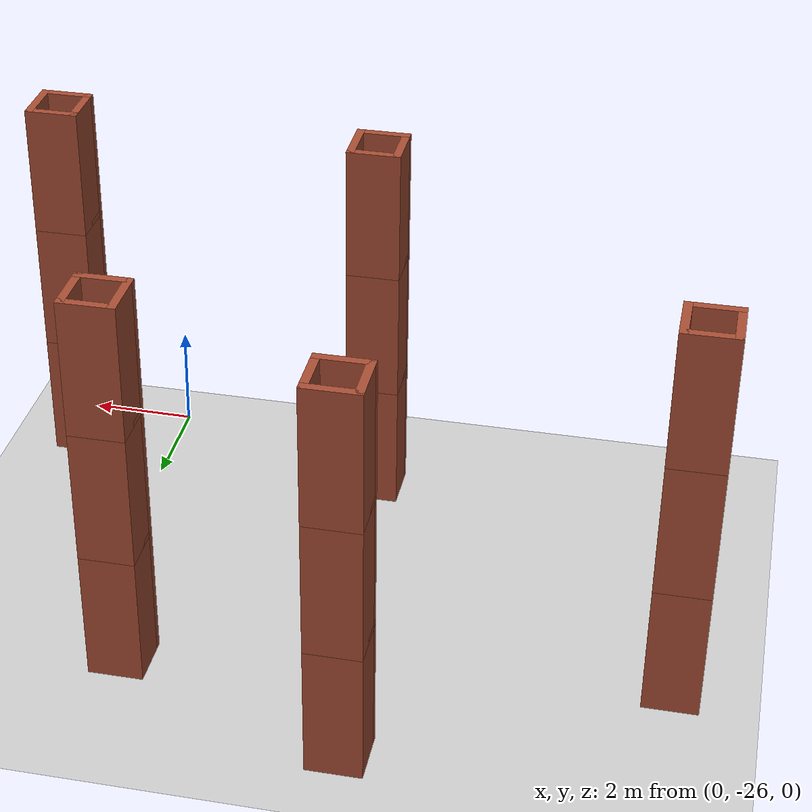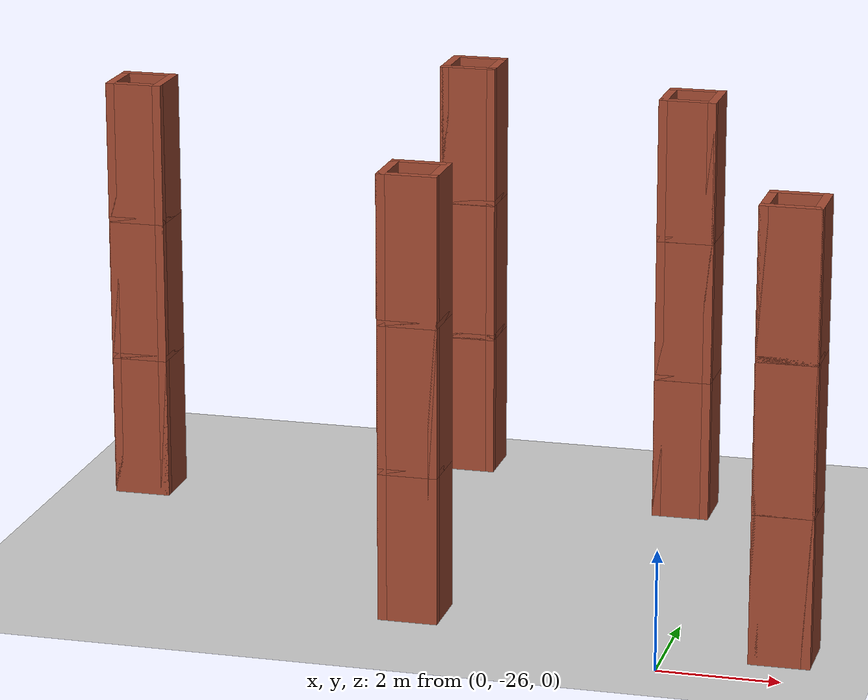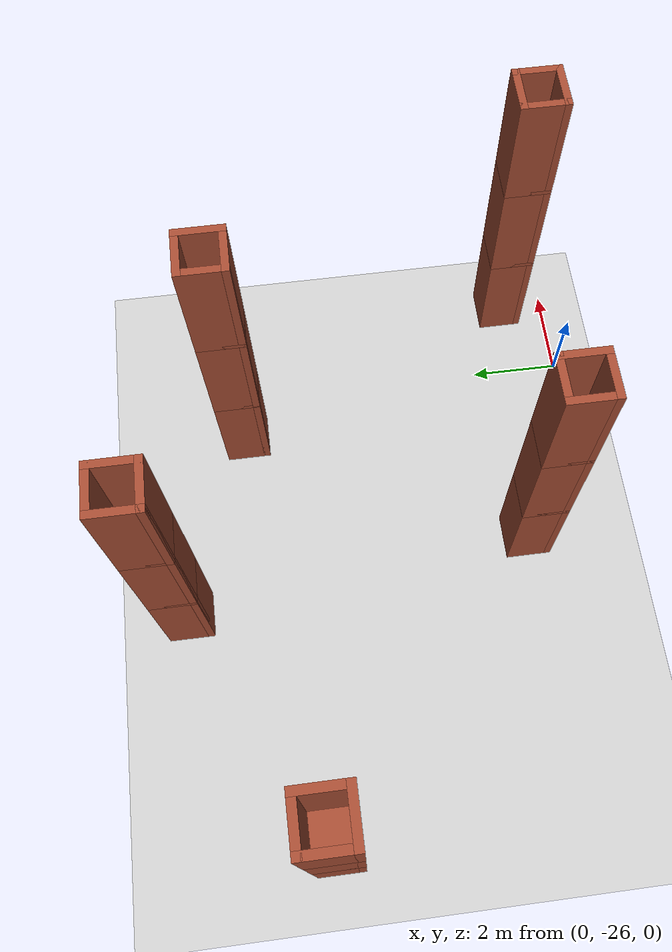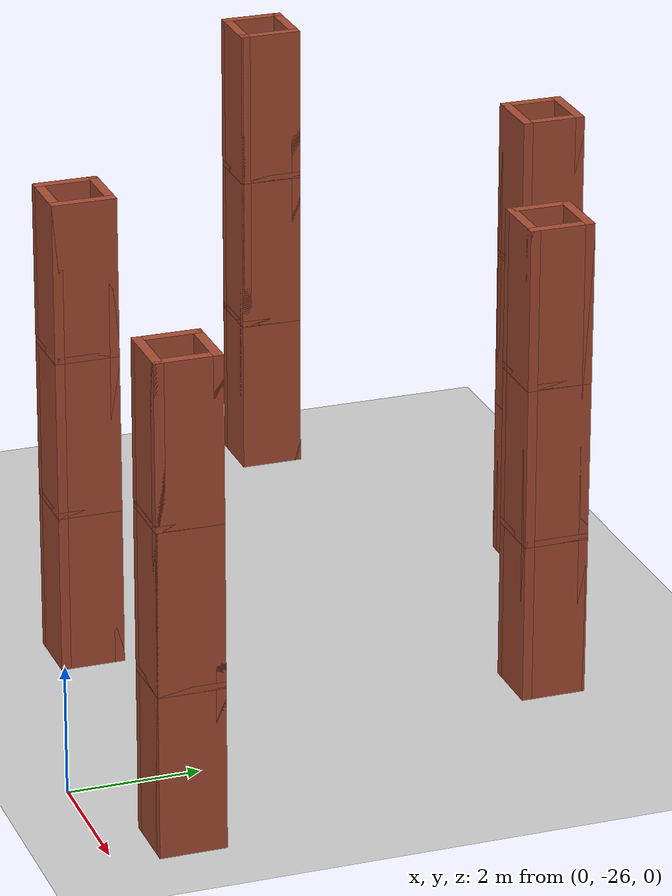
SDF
<sdf version="1.7">
 <world name="default">
  <model name="ground_plane">
   <static>1</static>
   <link name="link">
    <collision name="collision">
     <geometry><plane><normal>0 0 1</normal><size>100 100</size></plane></geometry>
     <surface>
      <contact><collide_bitmask>65535</collide_bitmask></contact>
      <friction><ode><mu>100</mu><mu2>50</mu2></ode></friction>
     </surface>
    </collision>
    <visual name="visual">
     <cast_shadows>0</cast_shadows>
     <geometry><plane><normal>0 0 1</normal><size>100 100</size></plane></geometry>
     <material>
      <script><uri>file://media/materials/scripts/gazebo.material</uri><name>Gazebo/Grey</name></script>
     </material>
    </visual>
   </link>
  </model>
  <model name="wall_model_clone_3">
   <pose>5.07114 -25.4883 0 0 -0 0</pose>
   <link name="Floor_3">
    <collision name="Floor_3_Collision">
     <geometry><box><size>1 1 0.1</size></box></geometry>
     <pose>0 0 0.05 0 -0 0</pose>
    </collision>
    <visual name="Floor_3_Visual">
     <pose>0 0 0.05 0 -0 0</pose>
     <geometry><box><size>1 1 0.1</size></box></geometry>
     <material>
      <script><uri>file://media/materials/scripts/gazebo.material</uri><name>Gazebo/Bricks</name></script>
      <ambient>1 1 1 1</ambient>
     </material>
     <meta><layer>1</layer></meta>
    </visual>
    <pose>-3.21504 0.623396 2.5 0 -0 0</pose>
   </link>
   <link name="Floor_4">
    <collision name="Floor_4_Collision">
     <geometry><box><size>1 1 0.1</size></box></geometry>
     <pose>0 0 0.05 0 -0 0</pose>
    </collision>
    <visual name="Floor_4_Visual">
     <pose>0 0 0.05 0 -0 0</pose>
     <geometry><box><size>1 1 0.1</size></box></geometry>
     <material>
      <script><uri>file://media/materials/scripts/gazebo.material</uri><name>Gazebo/Bricks</name></script>
      <ambient>1 1 1 1</ambient>
     </material>
     <meta><layer>2</layer></meta>
    </visual>
    <pose>-3.21504 0.623396 5 0 -0 0</pose>
   </link>
   <link name="Wall_19">
    <collision name="Wall_19_Collision">
     <geometry><box><size>1 0.15 2.5</size></box></geometry>
     <pose>0 0 1.25 0 -0 0</pose>
    </collision>
    <visual name="Wall_19_Visual">
     <pose>0 0 1.25 0 -0 0</pose>
     <geometry><box><size>1 0.15 2.5</size></box></geometry>
     <material>
      <script><uri>file://media/materials/scripts/gazebo.material</uri><name>Gazebo/Bricks</name></script>
      <ambient>1 1 1 1</ambient>
     </material>
     <meta><layer>0</layer></meta>
    </visual>
    <pose>-3.64004 0.623396 0 0 -0 1.5708</pose>
   </link>
   <link name="Wall_21">
    <collision name="Wall_21_Collision">
     <geometry><box><size>1 0.15 2.5</size></box></geometry>
     <pose>0 0 1.25 0 -0 0</pose>
    </collision>
    <visual name="Wall_21_Visual">
     <pose>0 0 1.25 0 -0 0</pose>
     <geometry><box><size>1 0.15 2.5</size></box></geometry>
     <material>
      <script><uri>file://media/materials/scripts/gazebo.material</uri><name>Gazebo/Bricks</name></script>
      <ambient>1 1 1 1</ambient>
     </material>
     <meta><layer>0</layer></meta>
    </visual>
    <pose>-3.21504 1.0484 0 0 -0 0</pose>
   </link>
   <link name="Wall_22">
    <collision name="Wall_22_Collision">
     <geometry><box><size>1 0.15 2.5</size></box></geometry>
     <pose>0 0 1.25 0 -0 0</pose>
    </collision>
    <visual name="Wall_22_Visual">
     <pose>0 0 1.25 0 -0 0</pose>
     <geometry><box><size>1 0.15 2.5</size></box></geometry>
     <material>
      <script><uri>file://media/materials/scripts/gazebo.material</uri><name>Gazebo/Bricks</name></script>
      <ambient>1 1 1 1</ambient>
     </material>
     <meta><layer>0</layer></meta>
    </visual>
    <pose>-2.79004 0.623396 0 0 -0 -1.5708</pose>
   </link>
   <link name="Wall_23">
    <collision name="Wall_23_Collision">
     <geometry><box><size>1 0.15 2.5</size></box></geometry>
     <pose>0 0 1.25 0 -0 0</pose>
    </collision>
    <visual name="Wall_23_Visual">
     <pose>0 0 1.25 0 -0 0</pose>
     <geometry><box><size>1 0.15 2.5</size></box></geometry>
     <material>
      <script><uri>file://media/materials/scripts/gazebo.material</uri><name>Gazebo/Bricks</name></script>
      <ambient>1 1 1 1</ambient>
     </material>
     <meta><layer>0</layer></meta>
    </visual>
    <pose>-3.21504 0.198396 0 0 -0 3.14159</pose>
   </link>
   <link name="Wall_25">
    <collision name="Wall_25_Collision">
     <geometry><box><size>1 0.15 2.5</size></box></geometry>
     <pose>0 0 1.25 0 -0 0</pose>
    </collision>
    <visual name="Wall_25_Visual">
     <pose>0 0 1.25 0 -0 0</pose>
     <geometry><box><size>1 0.15 2.5</size></box></geometry>
     <material>
      <script><uri>file://media/materials/scripts/gazebo.material</uri><name>Gazebo/Bricks</name></script>
      <ambient>1 1 1 1</ambient>
     </material>
     <meta><layer>1</layer></meta>
    </visual>
    <pose>-3.64004 0.623396 2.5 0 -0 1.5708</pose>
   </link>
   <link name="Wall_26">
    <collision name="Wall_26_Collision">
     <geometry><box><size>1 0.15 2.5</size></box></geometry>
     <pose>0 0 1.25 0 -0 0</pose>
    </collision>
    <visual name="Wall_26_Visual">
     <pose>0 0 1.25 0 -0 0</pose>
     <geometry><box><size>1 0.15 2.5</size></box></geometry>
     <material>
      <script><uri>file://media/materials/scripts/gazebo.material</uri><name>Gazebo/Bricks</name></script>
      <ambient>1 1 1 1</ambient>
     </material>
     <meta><layer>1</layer></meta>
    </visual>
    <pose>-3.21504 1.0484 2.5 0 -0 0</pose>
   </link>
   <link name="Wall_27">
    <collision name="Wall_27_Collision">
     <geometry><box><size>1 0.15 2.5</size></box></geometry>
     <pose>0 0 1.25 0 -0 0</pose>
    </collision>
    <visual name="Wall_27_Visual">
     <pose>0 0 1.25 0 -0 0</pose>
     <geometry><box><size>1 0.15 2.5</size></box></geometry>
     <material>
      <script><uri>file://media/materials/scripts/gazebo.material</uri><name>Gazebo/Bricks</name></script>
      <ambient>1 1 1 1</ambient>
     </material>
     <meta><layer>1</layer></meta>
    </visual>
    <pose>-2.79004 0.623396 2.5 0 -0 -1.5708</pose>
   </link>
   <link name="Wall_28">
    <collision name="Wall_28_Collision">
     <geometry><box><size>1 0.15 2.5</size></box></geometry>
     <pose>0 0 1.25 0 -0 0</pose>
    </collision>
    <visual name="Wall_28_Visual">
     <pose>0 0 1.25 0 -0 0</pose>
     <geometry><box><size>1 0.15 2.5</size></box></geometry>
     <material>
      <script><uri>file://media/materials/scripts/gazebo.material</uri><name>Gazebo/Bricks</name></script>
      <ambient>1 1 1 1</ambient>
     </material>
     <meta><layer>1</layer></meta>
    </visual>
    <pose>-3.21504 0.198396 2.5 0 -0 3.14159</pose>
   </link>
   <link name="Wall_29">
    <collision name="Wall_29_Collision">
     <geometry><box><size>1 0.15 2.5</size></box></geometry>
     <pose>0 0 1.25 0 -0 0</pose>
    </collision>
    <visual name="Wall_29_Visual">
     <pose>0 0 1.25 0 -0 0</pose>
     <geometry><box><size>1 0.15 2.5</size></box></geometry>
     <material>
      <script><uri>file://media/materials/scripts/gazebo.material</uri><name>Gazebo/Bricks</name></script>
      <ambient>1 1 1 1</ambient>
     </material>
     <meta><layer>2</layer></meta>
    </visual>
    <pose>-3.64004 0.623396 5 0 -0 1.5708</pose>
   </link>
   <link name="Wall_30">
    <collision name="Wall_30_Collision">
     <geometry><box><size>1 0.15 2.5</size></box></geometry>
     <pose>0 0 1.25 0 -0 0</pose>
    </collision>
    <visual name="Wall_30_Visual">
     <pose>0 0 1.25 0 -0 0</pose>
     <geometry><box><size>1 0.15 2.5</size></box></geometry>
     <material>
      <script><uri>file://media/materials/scripts/gazebo.material</uri><name>Gazebo/Bricks</name></script>
      <ambient>1 1 1 1</ambient>
     </material>
     <meta><layer>2</layer></meta>
    </visual>
    <pose>-3.21504 1.0484 5 0 -0 0</pose>
   </link>
   <link name="Wall_31">
    <collision name="Wall_31_Collision">
     <geometry><box><size>1 0.15 2.5</size></box></geometry>
     <pose>0 0 1.25 0 -0 0</pose>
    </collision>
    <visual name="Wall_31_Visual">
     <pose>0 0 1.25 0 -0 0</pose>
     <geometry><box><size>1 0.15 2.5</size></box></geometry>
     <material>
      <script><uri>file://media/materials/scripts/gazebo.material</uri><name>Gazebo/Bricks</name></script>
      <ambient>1 1 1 1</ambient>
     </material>
     <meta><layer>2</layer></meta>
    </visual>
    <pose>-2.79004 0.623396 5 0 -0 -1.5708</pose>
   </link>
   <link name="Wall_32">
    <collision name="Wall_32_Collision">
     <geometry><box><size>1 0.15 2.5</size></box></geometry>
     <pose>0 0 1.25 0 -0 0</pose>
    </collision>
    <visual name="Wall_32_Visual">
     <pose>0 0 1.25 0 -0 0</pose>
     <geometry><box><size>1 0.15 2.5</size></box></geometry>
     <material>
      <script><uri>file://media/materials/scripts/gazebo.material</uri><name>Gazebo/Bricks</name></script>
      <ambient>1 1 1 1</ambient>
     </material>
     <meta><layer>2</layer></meta>
    </visual>
    <pose>-3.21504 0.198396 5 0 -0 3.14159</pose>
   </link>
   <static>1</static>
  </model>
  <model name="wall_model_clone_5">
   <pose>-1.12837 -25.0525 0 0 -0 0</pose>
   <link name="Floor_3">
    <collision name="Floor_3_Collision">
     <geometry><box><size>1 1 0.1</size></box></geometry>
     <pose>0 0 0.05 0 -0 0</pose>
    </collision>
    <visual name="Floor_3_Visual">
     <pose>0 0 0.05 0 -0 0</pose>
     <geometry><box><size>1 1 0.1</size></box></geometry>
     <material>
      <script><uri>file://media/materials/scripts/gazebo.material</uri><name>Gazebo/Bricks</name></script>
      <ambient>1 1 1 1</ambient>
     </material>
     <meta><layer>1</layer></meta>
    </visual>
    <pose>-3.21504 0.623396 2.5 0 -0 0</pose>
   </link>
   <link name="Floor_4">
    <collision name="Floor_4_Collision">
     <geometry><box><size>1 1 0.1</size></box></geometry>
     <pose>0 0 0.05 0 -0 0</pose>
    </collision>
    <visual name="Floor_4_Visual">
     <pose>0 0 0.05 0 -0 0</pose>
     <geometry><box><size>1 1 0.1</size></box></geometry>
     <material>
      <script><uri>file://media/materials/scripts/gazebo.material</uri><name>Gazebo/Bricks</name></script>
      <ambient>1 1 1 1</ambient>
     </material>
     <meta><layer>2</layer></meta>
    </visual>
    <pose>-3.21504 0.623396 5 0 -0 0</pose>
   </link>
   <link name="Wall_19">
    <collision name="Wall_19_Collision">
     <geometry><box><size>1 0.15 2.5</size></box></geometry>
     <pose>0 0 1.25 0 -0 0</pose>
    </collision>
    <visual name="Wall_19_Visual">
     <pose>0 0 1.25 0 -0 0</pose>
     <geometry><box><size>1 0.15 2.5</size></box></geometry>
     <material>
      <script><uri>file://media/materials/scripts/gazebo.material</uri><name>Gazebo/Bricks</name></script>
      <ambient>1 1 1 1</ambient>
     </material>
     <meta><layer>0</layer></meta>
    </visual>
    <pose>-3.64004 0.623396 0 0 -0 1.5708</pose>
   </link>
   <link name="Wall_21">
    <collision name="Wall_21_Collision">
     <geometry><box><size>1 0.15 2.5</size></box></geometry>
     <pose>0 0 1.25 0 -0 0</pose>
    </collision>
    <visual name="Wall_21_Visual">
     <pose>0 0 1.25 0 -0 0</pose>
     <geometry><box><size>1 0.15 2.5</size></box></geometry>
     <material>
      <script><uri>file://media/materials/scripts/gazebo.material</uri><name>Gazebo/Bricks</name></script>
      <ambient>1 1 1 1</ambient>
     </material>
     <meta><layer>0</layer></meta>
    </visual>
    <pose>-3.21504 1.0484 0 0 -0 0</pose>
   </link>
   <link name="Wall_22">
    <collision name="Wall_22_Collision">
     <geometry><box><size>1 0.15 2.5</size></box></geometry>
     <pose>0 0 1.25 0 -0 0</pose>
    </collision>
    <visual name="Wall_22_Visual">
     <pose>0 0 1.25 0 -0 0</pose>
     <geometry><box><size>1 0.15 2.5</size></box></geometry>
     <material>
      <script><uri>file://media/materials/scripts/gazebo.material</uri><name>Gazebo/Bricks</name></script>
      <ambient>1 1 1 1</ambient>
     </material>
     <meta><layer>0</layer></meta>
    </visual>
    <pose>-2.79004 0.623396 0 0 -0 -1.5708</pose>
   </link>
   <link name="Wall_23">
    <collision name="Wall_23_Collision">
     <geometry><box><size>1 0.15 2.5</size></box></geometry>
     <pose>0 0 1.25 0 -0 0</pose>
    </collision>
    <visual name="Wall_23_Visual">
     <pose>0 0 1.25 0 -0 0</pose>
     <geometry><box><size>1 0.15 2.5</size></box></geometry>
     <material>
      <script><uri>file://media/materials/scripts/gazebo.material</uri><name>Gazebo/Bricks</name></script>
      <ambient>1 1 1 1</ambient>
     </material>
     <meta><layer>0</layer></meta>
    </visual>
    <pose>-3.21504 0.198396 0 0 -0 3.14159</pose>
   </link>
   <link name="Wall_25">
    <collision name="Wall_25_Collision">
     <geometry><box><size>1 0.15 2.5</size></box></geometry>
     <pose>0 0 1.25 0 -0 0</pose>
    </collision>
    <visual name="Wall_25_Visual">
     <pose>0 0 1.25 0 -0 0</pose>
     <geometry><box><size>1 0.15 2.5</size></box></geometry>
     <material>
      <script><uri>file://media/materials/scripts/gazebo.material</uri><name>Gazebo/Bricks</name></script>
      <ambient>1 1 1 1</ambient>
     </material>
     <meta><layer>1</layer></meta>
    </visual>
    <pose>-3.64004 0.623396 2.5 0 -0 1.5708</pose>
   </link>
   <link name="Wall_26">
    <collision name="Wall_26_Collision">
     <geometry><box><size>1 0.15 2.5</size></box></geometry>
     <pose>0 0 1.25 0 -0 0</pose>
    </collision>
    <visual name="Wall_26_Visual">
     <pose>0 0 1.25 0 -0 0</pose>
     <geometry><box><size>1 0.15 2.5</size></box></geometry>
     <material>
      <script><uri>file://media/materials/scripts/gazebo.material</uri><name>Gazebo/Bricks</name></script>
      <ambient>1 1 1 1</ambient>
     </material>
     <meta><layer>1</layer></meta>
    </visual>
    <pose>-3.21504 1.0484 2.5 0 -0 0</pose>
   </link>
   <link name="Wall_27">
    <collision name="Wall_27_Collision">
     <geometry><box><size>1 0.15 2.5</size></box></geometry>
     <pose>0 0 1.25 0 -0 0</pose>
    </collision>
    <visual name="Wall_27_Visual">
     <pose>0 0 1.25 0 -0 0</pose>
     <geometry><box><size>1 0.15 2.5</size></box></geometry>
     <material>
      <script><uri>file://media/materials/scripts/gazebo.material</uri><name>Gazebo/Bricks</name></script>
      <ambient>1 1 1 1</ambient>
     </material>
     <meta><layer>1</layer></meta>
    </visual>
    <pose>-2.79004 0.623396 2.5 0 -0 -1.5708</pose>
   </link>
   <link name="Wall_28">
    <collision name="Wall_28_Collision">
     <geometry><box><size>1 0.15 2.5</size></box></geometry>
     <pose>0 0 1.25 0 -0 0</pose>
    </collision>
    <visual name="Wall_28_Visual">
     <pose>0 0 1.25 0 -0 0</pose>
     <geometry><box><size>1 0.15 2.5</size></box></geometry>
     <material>
      <script><uri>file://media/materials/scripts/gazebo.material</uri><name>Gazebo/Bricks</name></script>
      <ambient>1 1 1 1</ambient>
     </material>
     <meta><layer>1</layer></meta>
    </visual>
    <pose>-3.21504 0.198396 2.5 0 -0 3.14159</pose>
   </link>
   <link name="Wall_29">
    <collision name="Wall_29_Collision">
     <geometry><box><size>1 0.15 2.5</size></box></geometry>
     <pose>0 0 1.25 0 -0 0</pose>
    </collision>
    <visual name="Wall_29_Visual">
     <pose>0 0 1.25 0 -0 0</pose>
     <geometry><box><size>1 0.15 2.5</size></box></geometry>
     <material>
      <script><uri>file://media/materials/scripts/gazebo.material</uri><name>Gazebo/Bricks</name></script>
      <ambient>1 1 1 1</ambient>
     </material>
     <meta><layer>2</layer></meta>
    </visual>
    <pose>-3.64004 0.623396 5 0 -0 1.5708</pose>
   </link>
   <link name="Wall_30">
    <collision name="Wall_30_Collision">
     <geometry><box><size>1 0.15 2.5</size></box></geometry>
     <pose>0 0 1.25 0 -0 0</pose>
    </collision>
    <visual name="Wall_30_Visual">
     <pose>0 0 1.25 0 -0 0</pose>
     <geometry><box><size>1 0.15 2.5</size></box></geometry>
     <material>
      <script><uri>file://media/materials/scripts/gazebo.material</uri><name>Gazebo/Bricks</name></script>
      <ambient>1 1 1 1</ambient>
     </material>
     <meta><layer>2</layer></meta>
    </visual>
    <pose>-3.21504 1.0484 5 0 -0 0</pose>
   </link>
   <link name="Wall_31">
    <collision name="Wall_31_Collision">
     <geometry><box><size>1 0.15 2.5</size></box></geometry>
     <pose>0 0 1.25 0 -0 0</pose>
    </collision>
    <visual name="Wall_31_Visual">
     <pose>0 0 1.25 0 -0 0</pose>
     <geometry><box><size>1 0.15 2.5</size></box></geometry>
     <material>
      <script><uri>file://media/materials/scripts/gazebo.material</uri><name>Gazebo/Bricks</name></script>
      <ambient>1 1 1 1</ambient>
     </material>
     <meta><layer>2</layer></meta>
    </visual>
    <pose>-2.79004 0.623396 5 0 -0 -1.5708</pose>
   </link>
   <link name="Wall_32">
    <collision name="Wall_32_Collision">
     <geometry><box><size>1 0.15 2.5</size></box></geometry>
     <pose>0 0 1.25 0 -0 0</pose>
    </collision>
    <visual name="Wall_32_Visual">
     <pose>0 0 1.25 0 -0 0</pose>
     <geometry><box><size>1 0.15 2.5</size></box></geometry>
     <material>
      <script><uri>file://media/materials/scripts/gazebo.material</uri><name>Gazebo/Bricks</name></script>
      <ambient>1 1 1 1</ambient>
     </material>
     <meta><layer>2</layer></meta>
    </visual>
    <pose>-3.21504 0.198396 5 0 -0 3.14159</pose>
   </link>
   <static>1</static>
  </model>
  <model name="wall_model_clone_12">
   <pose>2.16097 -18.8638 0 0 -0 0</pose>
   <link name="Floor_3">
    <collision name="Floor_3_Collision">
     <geometry><box><size>1 1 0.1</size></box></geometry>
     <pose>0 0 0.05 0 -0 0</pose>
    </collision>
    <visual name="Floor_3_Visual">
     <pose>0 0 0.05 0 -0 0</pose>
     <geometry><box><size>1 1 0.1</size></box></geometry>
     <material>
      <script><uri>file://media/materials/scripts/gazebo.material</uri><name>Gazebo/Bricks</name></script>
      <ambient>1 1 1 1</ambient>
     </material>
     <meta><layer>1</layer></meta>
    </visual>
    <pose>-3.21504 0.623396 2.5 0 -0 0</pose>
   </link>
   <link name="Floor_4">
    <collision name="Floor_4_Collision">
     <geometry><box><size>1 1 0.1</size></box></geometry>
     <pose>0 0 0.05 0 -0 0</pose>
    </collision>
    <visual name="Floor_4_Visual">
     <pose>0 0 0.05 0 -0 0</pose>
     <geometry><box><size>1 1 0.1</size></box></geometry>
     <material>
      <script><uri>file://media/materials/scripts/gazebo.material</uri><name>Gazebo/Bricks</name></script>
      <ambient>1 1 1 1</ambient>
     </material>
     <meta><layer>2</layer></meta>
    </visual>
    <pose>-3.21504 0.623396 5 0 -0 0</pose>
   </link>
   <link name="Wall_19">
    <collision name="Wall_19_Collision">
     <geometry><box><size>1 0.15 2.5</size></box></geometry>
     <pose>0 0 1.25 0 -0 0</pose>
    </collision>
    <visual name="Wall_19_Visual">
     <pose>0 0 1.25 0 -0 0</pose>
     <geometry><box><size>1 0.15 2.5</size></box></geometry>
     <material>
      <script><uri>file://media/materials/scripts/gazebo.material</uri><name>Gazebo/Bricks</name></script>
      <ambient>1 1 1 1</ambient>
     </material>
     <meta><layer>0</layer></meta>
    </visual>
    <pose>-3.64004 0.623396 0 0 -0 1.5708</pose>
   </link>
   <link name="Wall_21">
    <collision name="Wall_21_Collision">
     <geometry><box><size>1 0.15 2.5</size></box></geometry>
     <pose>0 0 1.25 0 -0 0</pose>
    </collision>
    <visual name="Wall_21_Visual">
     <pose>0 0 1.25 0 -0 0</pose>
     <geometry><box><size>1 0.15 2.5</size></box></geometry>
     <material>
      <script><uri>file://media/materials/scripts/gazebo.material</uri><name>Gazebo/Bricks</name></script>
      <ambient>1 1 1 1</ambient>
     </material>
     <meta><layer>0</layer></meta>
    </visual>
    <pose>-3.21504 1.0484 0 0 -0 0</pose>
   </link>
   <link name="Wall_22">
    <collision name="Wall_22_Collision">
     <geometry><box><size>1 0.15 2.5</size></box></geometry>
     <pose>0 0 1.25 0 -0 0</pose>
    </collision>
    <visual name="Wall_22_Visual">
     <pose>0 0 1.25 0 -0 0</pose>
     <geometry><box><size>1 0.15 2.5</size></box></geometry>
     <material>
      <script><uri>file://media/materials/scripts/gazebo.material</uri><name>Gazebo/Bricks</name></script>
      <ambient>1 1 1 1</ambient>
     </material>
     <meta><layer>0</layer></meta>
    </visual>
    <pose>-2.79004 0.623396 0 0 -0 -1.5708</pose>
   </link>
   <link name="Wall_23">
    <collision name="Wall_23_Collision">
     <geometry><box><size>1 0.15 2.5</size></box></geometry>
     <pose>0 0 1.25 0 -0 0</pose>
    </collision>
    <visual name="Wall_23_Visual">
     <pose>0 0 1.25 0 -0 0</pose>
     <geometry><box><size>1 0.15 2.5</size></box></geometry>
     <material>
      <script><uri>file://media/materials/scripts/gazebo.material</uri><name>Gazebo/Bricks</name></script>
      <ambient>1 1 1 1</ambient>
     </material>
     <meta><layer>0</layer></meta>
    </visual>
    <pose>-3.21504 0.198396 0 0 -0 3.14159</pose>
   </link>
   <link name="Wall_25">
    <collision name="Wall_25_Collision">
     <geometry><box><size>1 0.15 2.5</size></box></geometry>
     <pose>0 0 1.25 0 -0 0</pose>
    </collision>
    <visual name="Wall_25_Visual">
     <pose>0 0 1.25 0 -0 0</pose>
     <geometry><box><size>1 0.15 2.5</size></box></geometry>
     <material>
      <script><uri>file://media/materials/scripts/gazebo.material</uri><name>Gazebo/Bricks</name></script>
      <ambient>1 1 1 1</ambient>
     </material>
     <meta><layer>1</layer></meta>
    </visual>
    <pose>-3.64004 0.623396 2.5 0 -0 1.5708</pose>
   </link>
   <link name="Wall_26">
    <collision name="Wall_26_Collision">
     <geometry><box><size>1 0.15 2.5</size></box></geometry>
     <pose>0 0 1.25 0 -0 0</pose>
    </collision>
    <visual name="Wall_26_Visual">
     <pose>0 0 1.25 0 -0 0</pose>
     <geometry><box><size>1 0.15 2.5</size></box></geometry>
     <material>
      <script><uri>file://media/materials/scripts/gazebo.material</uri><name>Gazebo/Bricks</name></script>
      <ambient>1 1 1 1</ambient>
     </material>
     <meta><layer>1</layer></meta>
    </visual>
    <pose>-3.21504 1.0484 2.5 0 -0 0</pose>
   </link>
   <link name="Wall_27">
    <collision name="Wall_27_Collision">
     <geometry><box><size>1 0.15 2.5</size></box></geometry>
     <pose>0 0 1.25 0 -0 0</pose>
    </collision>
    <visual name="Wall_27_Visual">
     <pose>0 0 1.25 0 -0 0</pose>
     <geometry><box><size>1 0.15 2.5</size></box></geometry>
     <material>
      <script><uri>file://media/materials/scripts/gazebo.material</uri><name>Gazebo/Bricks</name></script>
      <ambient>1 1 1 1</ambient>
     </material>
     <meta><layer>1</layer></meta>
    </visual>
    <pose>-2.79004 0.623396 2.5 0 -0 -1.5708</pose>
   </link>
   <link name="Wall_28">
    <collision name="Wall_28_Collision">
     <geometry><box><size>1 0.15 2.5</size></box></geometry>
     <pose>0 0 1.25 0 -0 0</pose>
    </collision>
    <visual name="Wall_28_Visual">
     <pose>0 0 1.25 0 -0 0</pose>
     <geometry><box><size>1 0.15 2.5</size></box></geometry>
     <material>
      <script><uri>file://media/materials/scripts/gazebo.material</uri><name>Gazebo/Bricks</name></script>
      <ambient>1 1 1 1</ambient>
     </material>
     <meta><layer>1</layer></meta>
    </visual>
    <pose>-3.21504 0.198396 2.5 0 -0 3.14159</pose>
   </link>
   <link name="Wall_29">
    <collision name="Wall_29_Collision">
     <geometry><box><size>1 0.15 2.5</size></box></geometry>
     <pose>0 0 1.25 0 -0 0</pose>
    </collision>
    <visual name="Wall_29_Visual">
     <pose>0 0 1.25 0 -0 0</pose>
     <geometry><box><size>1 0.15 2.5</size></box></geometry>
     <material>
      <script><uri>file://media/materials/scripts/gazebo.material</uri><name>Gazebo/Bricks</name></script>
      <ambient>1 1 1 1</ambient>
     </material>
     <meta><layer>2</layer></meta>
    </visual>
    <pose>-3.64004 0.623396 5 0 -0 1.5708</pose>
   </link>
   <link name="Wall_30">
    <collision name="Wall_30_Collision">
     <geometry><box><size>1 0.15 2.5</size></box></geometry>
     <pose>0 0 1.25 0 -0 0</pose>
    </collision>
    <visual name="Wall_30_Visual">
     <pose>0 0 1.25 0 -0 0</pose>
     <geometry><box><size>1 0.15 2.5</size></box></geometry>
     <material>
      <script><uri>file://media/materials/scripts/gazebo.material</uri><name>Gazebo/Bricks</name></script>
      <ambient>1 1 1 1</ambient>
     </material>
     <meta><layer>2</layer></meta>
    </visual>
    <pose>-3.21504 1.0484 5 0 -0 0</pose>
   </link>
   <link name="Wall_31">
    <collision name="Wall_31_Collision">
     <geometry><box><size>1 0.15 2.5</size></box></geometry>
     <pose>0 0 1.25 0 -0 0</pose>
    </collision>
    <visual name="Wall_31_Visual">
     <pose>0 0 1.25 0 -0 0</pose>
     <geometry><box><size>1 0.15 2.5</size></box></geometry>
     <material>
      <script><uri>file://media/materials/scripts/gazebo.material</uri><name>Gazebo/Bricks</name></script>
      <ambient>1 1 1 1</ambient>
     </material>
     <meta><layer>2</layer></meta>
    </visual>
    <pose>-2.79004 0.623396 5 0 -0 -1.5708</pose>
   </link>
   <link name="Wall_32">
    <collision name="Wall_32_Collision">
     <geometry><box><size>1 0.15 2.5</size></box></geometry>
     <pose>0 0 1.25 0 -0 0</pose>
    </collision>
    <visual name="Wall_32_Visual">
     <pose>0 0 1.25 0 -0 0</pose>
     <geometry><box><size>1 0.15 2.5</size></box></geometry>
     <material>
      <script><uri>file://media/materials/scripts/gazebo.material</uri><name>Gazebo/Bricks</name></script>
      <ambient>1 1 1 1</ambient>
     </material>
     <meta><layer>2</layer></meta>
    </visual>
    <pose>-3.21504 0.198396 5 0 -0 3.14159</pose>
   </link>
   <static>1</static>
  </model>
  <model name="wall_model_clone_13">
   <pose>-2.12309 -17.2566 0 0 -0 0</pose>
   <link name="Floor_3">
    <collision name="Floor_3_Collision">
     <geometry><box><size>1 1 0.1</size></box></geometry>
     <pose>0 0 0.05 0 -0 0</pose>
    </collision>
    <visual name="Floor_3_Visual">
     <pose>0 0 0.05 0 -0 0</pose>
     <geometry><box><size>1 1 0.1</size></box></geometry>
     <material>
      <script><uri>file://media/materials/scripts/gazebo.material</uri><name>Gazebo/Bricks</name></script>
      <ambient>1 1 1 1</ambient>
     </material>
     <meta><layer>1</layer></meta>
    </visual>
    <pose>-3.21504 0.623396 2.5 0 -0 0</pose>
   </link>
   <link name="Floor_4">
    <collision name="Floor_4_Collision">
     <geometry><box><size>1 1 0.1</size></box></geometry>
     <pose>0 0 0.05 0 -0 0</pose>
    </collision>
    <visual name="Floor_4_Visual">
     <pose>0 0 0.05 0 -0 0</pose>
     <geometry><box><size>1 1 0.1</size></box></geometry>
     <material>
      <script><uri>file://media/materials/scripts/gazebo.material</uri><name>Gazebo/Bricks</name></script>
      <ambient>1 1 1 1</ambient>
     </material>
     <meta><layer>2</layer></meta>
    </visual>
    <pose>-3.21504 0.623396 5 0 -0 0</pose>
   </link>
   <link name="Wall_19">
    <collision name="Wall_19_Collision">
     <geometry><box><size>1 0.15 2.5</size></box></geometry>
     <pose>0 0 1.25 0 -0 0</pose>
    </collision>
    <visual name="Wall_19_Visual">
     <pose>0 0 1.25 0 -0 0</pose>
     <geometry><box><size>1 0.15 2.5</size></box></geometry>
     <material>
      <script><uri>file://media/materials/scripts/gazebo.material</uri><name>Gazebo/Bricks</name></script>
      <ambient>1 1 1 1</ambient>
     </material>
     <meta><layer>0</layer></meta>
    </visual>
    <pose>-3.64004 0.623396 0 0 -0 1.5708</pose>
   </link>
   <link name="Wall_21">
    <collision name="Wall_21_Collision">
     <geometry><box><size>1 0.15 2.5</size></box></geometry>
     <pose>0 0 1.25 0 -0 0</pose>
    </collision>
    <visual name="Wall_21_Visual">
     <pose>0 0 1.25 0 -0 0</pose>
     <geometry><box><size>1 0.15 2.5</size></box></geometry>
     <material>
      <script><uri>file://media/materials/scripts/gazebo.material</uri><name>Gazebo/Bricks</name></script>
      <ambient>1 1 1 1</ambient>
     </material>
     <meta><layer>0</layer></meta>
    </visual>
    <pose>-3.21504 1.0484 0 0 -0 0</pose>
   </link>
   <link name="Wall_22">
    <collision name="Wall_22_Collision">
     <geometry><box><size>1 0.15 2.5</size></box></geometry>
     <pose>0 0 1.25 0 -0 0</pose>
    </collision>
    <visual name="Wall_22_Visual">
     <pose>0 0 1.25 0 -0 0</pose>
     <geometry><box><size>1 0.15 2.5</size></box></geometry>
     <material>
      <script><uri>file://media/materials/scripts/gazebo.material</uri><name>Gazebo/Bricks</name></script>
      <ambient>1 1 1 1</ambient>
     </material>
     <meta><layer>0</layer></meta>
    </visual>
    <pose>-2.79004 0.623396 0 0 -0 -1.5708</pose>
   </link>
   <link name="Wall_23">
    <collision name="Wall_23_Collision">
     <geometry><box><size>1 0.15 2.5</size></box></geometry>
     <pose>0 0 1.25 0 -0 0</pose>
    </collision>
    <visual name="Wall_23_Visual">
     <pose>0 0 1.25 0 -0 0</pose>
     <geometry><box><size>1 0.15 2.5</size></box></geometry>
     <material>
      <script><uri>file://media/materials/scripts/gazebo.material</uri><name>Gazebo/Bricks</name></script>
      <ambient>1 1 1 1</ambient>
     </material>
     <meta><layer>0</layer></meta>
    </visual>
    <pose>-3.21504 0.198396 0 0 -0 3.14159</pose>
   </link>
   <link name="Wall_25">
    <collision name="Wall_25_Collision">
     <geometry><box><size>1 0.15 2.5</size></box></geometry>
     <pose>0 0 1.25 0 -0 0</pose>
    </collision>
    <visual name="Wall_25_Visual">
     <pose>0 0 1.25 0 -0 0</pose>
     <geometry><box><size>1 0.15 2.5</size></box></geometry>
     <material>
      <script><uri>file://media/materials/scripts/gazebo.material</uri><name>Gazebo/Bricks</name></script>
      <ambient>1 1 1 1</ambient>
     </material>
     <meta><layer>1</layer></meta>
    </visual>
    <pose>-3.64004 0.623396 2.5 0 -0 1.5708</pose>
   </link>
   <link name="Wall_26">
    <collision name="Wall_26_Collision">
     <geometry><box><size>1 0.15 2.5</size></box></geometry>
     <pose>0 0 1.25 0 -0 0</pose>
    </collision>
    <visual name="Wall_26_Visual">
     <pose>0 0 1.25 0 -0 0</pose>
     <geometry><box><size>1 0.15 2.5</size></box></geometry>
     <material>
      <script><uri>file://media/materials/scripts/gazebo.material</uri><name>Gazebo/Bricks</name></script>
      <ambient>1 1 1 1</ambient>
     </material>
     <meta><layer>1</layer></meta>
    </visual>
    <pose>-3.21504 1.0484 2.5 0 -0 0</pose>
   </link>
   <link name="Wall_27">
    <collision name="Wall_27_Collision">
     <geometry><box><size>1 0.15 2.5</size></box></geometry>
     <pose>0 0 1.25 0 -0 0</pose>
    </collision>
    <visual name="Wall_27_Visual">
     <pose>0 0 1.25 0 -0 0</pose>
     <geometry><box><size>1 0.15 2.5</size></box></geometry>
     <material>
      <script><uri>file://media/materials/scripts/gazebo.material</uri><name>Gazebo/Bricks</name></script>
      <ambient>1 1 1 1</ambient>
     </material>
     <meta><layer>1</layer></meta>
    </visual>
    <pose>-2.79004 0.623396 2.5 0 -0 -1.5708</pose>
   </link>
   <link name="Wall_28">
    <collision name="Wall_28_Collision">
     <geometry><box><size>1 0.15 2.5</size></box></geometry>
     <pose>0 0 1.25 0 -0 0</pose>
    </collision>
    <visual name="Wall_28_Visual">
     <pose>0 0 1.25 0 -0 0</pose>
     <geometry><box><size>1 0.15 2.5</size></box></geometry>
     <material>
      <script><uri>file://media/materials/scripts/gazebo.material</uri><name>Gazebo/Bricks</name></script>
      <ambient>1 1 1 1</ambient>
     </material>
     <meta><layer>1</layer></meta>
    </visual>
    <pose>-3.21504 0.198396 2.5 0 -0 3.14159</pose>
   </link>
   <link name="Wall_29">
    <collision name="Wall_29_Collision">
     <geometry><box><size>1 0.15 2.5</size></box></geometry>
     <pose>0 0 1.25 0 -0 0</pose>
    </collision>
    <visual name="Wall_29_Visual">
     <pose>0 0 1.25 0 -0 0</pose>
     <geometry><box><size>1 0.15 2.5</size></box></geometry>
     <material>
      <script><uri>file://media/materials/scripts/gazebo.material</uri><name>Gazebo/Bricks</name></script>
      <ambient>1 1 1 1</ambient>
     </material>
     <meta><layer>2</layer></meta>
    </visual>
    <pose>-3.64004 0.623396 5 0 -0 1.5708</pose>
   </link>
   <link name="Wall_30">
    <collision name="Wall_30_Collision">
     <geometry><box><size>1 0.15 2.5</size></box></geometry>
     <pose>0 0 1.25 0 -0 0</pose>
    </collision>
    <visual name="Wall_30_Visual">
     <pose>0 0 1.25 0 -0 0</pose>
     <geometry><box><size>1 0.15 2.5</size></box></geometry>
     <material>
      <script><uri>file://media/materials/scripts/gazebo.material</uri><name>Gazebo/Bricks</name></script>
      <ambient>1 1 1 1</ambient>
     </material>
     <meta><layer>2</layer></meta>
    </visual>
    <pose>-3.21504 1.0484 5 0 -0 0</pose>
   </link>
   <link name="Wall_31">
    <collision name="Wall_31_Collision">
     <geometry><box><size>1 0.15 2.5</size></box></geometry>
     <pose>0 0 1.25 0 -0 0</pose>
    </collision>
    <visual name="Wall_31_Visual">
     <pose>0 0 1.25 0 -0 0</pose>
     <geometry><box><size>1 0.15 2.5</size></box></geometry>
     <material>
      <script><uri>file://media/materials/scripts/gazebo.material</uri><name>Gazebo/Bricks</name></script>
      <ambient>1 1 1 1</ambient>
     </material>
     <meta><layer>2</layer></meta>
    </visual>
    <pose>-2.79004 0.623396 5 0 -0 -1.5708</pose>
   </link>
   <link name="Wall_32">
    <collision name="Wall_32_Collision">
     <geometry><box><size>1 0.15 2.5</size></box></geometry>
     <pose>0 0 1.25 0 -0 0</pose>
    </collision>
    <visual name="Wall_32_Visual">
     <pose>0 0 1.25 0 -0 0</pose>
     <geometry><box><size>1 0.15 2.5</size></box></geometry>
     <material>
      <script><uri>file://media/materials/scripts/gazebo.material</uri><name>Gazebo/Bricks</name></script>
      <ambient>1 1 1 1</ambient>
     </material>
     <meta><layer>2</layer></meta>
    </visual>
    <pose>-3.21504 0.198396 5 0 -0 3.14159</pose>
   </link>
   <static>1</static>
  </model>
  <model name="wall_model_clone_14">
   <pose>-7.42858 -20 0 0 -0 0</pose>
   <link name="Floor_3">
    <collision name="Floor_3_Collision">
     <geometry><box><size>1 1 0.1</size></box></geometry>
     <pose>0 0 0.05 0 -0 0</pose>
    </collision>
    <visual name="Floor_3_Visual">
     <pose>0 0 0.05 0 -0 0</pose>
     <geometry><box><size>1 1 0.1</size></box></geometry>
     <material>
      <script><uri>file://media/materials/scripts/gazebo.material</uri><name>Gazebo/Bricks</name></script>
      <ambient>1 1 1 1</ambient>
     </material>
     <meta><layer>1</layer></meta>
    </visual>
    <pose>-3.21504 0.623396 2.5 0 -0 0</pose>
   </link>
   <link name="Floor_4">
    <collision name="Floor_4_Collision">
     <geometry><box><size>1 1 0.1</size></box></geometry>
     <pose>0 0 0.05 0 -0 0</pose>
    </collision>
    <visual name="Floor_4_Visual">
     <pose>0 0 0.05 0 -0 0</pose>
     <geometry><box><size>1 1 0.1</size></box></geometry>
     <material>
      <script><uri>file://media/materials/scripts/gazebo.material</uri><name>Gazebo/Bricks</name></script>
      <ambient>1 1 1 1</ambient>
     </material>
     <meta><layer>2</layer></meta>
    </visual>
    <pose>-3.21504 0.623396 5 0 -0 0</pose>
   </link>
   <link name="Wall_19">
    <collision name="Wall_19_Collision">
     <geometry><box><size>1 0.15 2.5</size></box></geometry>
     <pose>0 0 1.25 0 -0 0</pose>
    </collision>
    <visual name="Wall_19_Visual">
     <pose>0 0 1.25 0 -0 0</pose>
     <geometry><box><size>1 0.15 2.5</size></box></geometry>
     <material>
      <script><uri>file://media/materials/scripts/gazebo.material</uri><name>Gazebo/Bricks</name></script>
      <ambient>1 1 1 1</ambient>
     </material>
     <meta><layer>0</layer></meta>
    </visual>
    <pose>-3.64004 0.623396 0 0 -0 1.5708</pose>
   </link>
   <link name="Wall_21">
    <collision name="Wall_21_Collision">
     <geometry><box><size>1 0.15 2.5</size></box></geometry>
     <pose>0 0 1.25 0 -0 0</pose>
    </collision>
    <visual name="Wall_21_Visual">
     <pose>0 0 1.25 0 -0 0</pose>
     <geometry><box><size>1 0.15 2.5</size></box></geometry>
     <material>
      <script><uri>file://media/materials/scripts/gazebo.material</uri><name>Gazebo/Bricks</name></script>
      <ambient>1 1 1 1</ambient>
     </material>
     <meta><layer>0</layer></meta>
    </visual>
    <pose>-3.21504 1.0484 0 0 -0 0</pose>
   </link>
   <link name="Wall_22">
    <collision name="Wall_22_Collision">
     <geometry><box><size>1 0.15 2.5</size></box></geometry>
     <pose>0 0 1.25 0 -0 0</pose>
    </collision>
    <visual name="Wall_22_Visual">
     <pose>0 0 1.25 0 -0 0</pose>
     <geometry><box><size>1 0.15 2.5</size></box></geometry>
     <material>
      <script><uri>file://media/materials/scripts/gazebo.material</uri><name>Gazebo/Bricks</name></script>
      <ambient>1 1 1 1</ambient>
     </material>
     <meta><layer>0</layer></meta>
    </visual>
    <pose>-2.79004 0.623396 0 0 -0 -1.5708</pose>
   </link>
   <link name="Wall_23">
    <collision name="Wall_23_Collision">
     <geometry><box><size>1 0.15 2.5</size></box></geometry>
     <pose>0 0 1.25 0 -0 0</pose>
    </collision>
    <visual name="Wall_23_Visual">
     <pose>0 0 1.25 0 -0 0</pose>
     <geometry><box><size>1 0.15 2.5</size></box></geometry>
     <material>
      <script><uri>file://media/materials/scripts/gazebo.material</uri><name>Gazebo/Bricks</name></script>
      <ambient>1 1 1 1</ambient>
     </material>
     <meta><layer>0</layer></meta>
    </visual>
    <pose>-3.21504 0.198396 0 0 -0 3.14159</pose>
   </link>
   <link name="Wall_25">
    <collision name="Wall_25_Collision">
     <geometry><box><size>1 0.15 2.5</size></box></geometry>
     <pose>0 0 1.25 0 -0 0</pose>
    </collision>
    <visual name="Wall_25_Visual">
     <pose>0 0 1.25 0 -0 0</pose>
     <geometry><box><size>1 0.15 2.5</size></box></geometry>
     <material>
      <script><uri>file://media/materials/scripts/gazebo.material</uri><name>Gazebo/Bricks</name></script>
      <ambient>1 1 1 1</ambient>
     </material>
     <meta><layer>1</layer></meta>
    </visual>
    <pose>-3.64004 0.623396 2.5 0 -0 1.5708</pose>
   </link>
   <link name="Wall_26">
    <collision name="Wall_26_Collision">
     <geometry><box><size>1 0.15 2.5</size></box></geometry>
     <pose>0 0 1.25 0 -0 0</pose>
    </collision>
    <visual name="Wall_26_Visual">
     <pose>0 0 1.25 0 -0 0</pose>
     <geometry><box><size>1 0.15 2.5</size></box></geometry>
     <material>
      <script><uri>file://media/materials/scripts/gazebo.material</uri><name>Gazebo/Bricks</name></script>
      <ambient>1 1 1 1</ambient>
     </material>
     <meta><layer>1</layer></meta>
    </visual>
    <pose>-3.21504 1.0484 2.5 0 -0 0</pose>
   </link>
   <link name="Wall_27">
    <collision name="Wall_27_Collision">
     <geometry><box><size>1 0.15 2.5</size></box></geometry>
     <pose>0 0 1.25 0 -0 0</pose>
    </collision>
    <visual name="Wall_27_Visual">
     <pose>0 0 1.25 0 -0 0</pose>
     <geometry><box><size>1 0.15 2.5</size></box></geometry>
     <material>
      <script><uri>file://media/materials/scripts/gazebo.material</uri><name>Gazebo/Bricks</name></script>
      <ambient>1 1 1 1</ambient>
     </material>
     <meta><layer>1</layer></meta>
    </visual>
    <pose>-2.79004 0.623396 2.5 0 -0 -1.5708</pose>
   </link>
   <link name="Wall_28">
    <collision name="Wall_28_Collision">
     <geometry><box><size>1 0.15 2.5</size></box></geometry>
     <pose>0 0 1.25 0 -0 0</pose>
    </collision>
    <visual name="Wall_28_Visual">
     <pose>0 0 1.25 0 -0 0</pose>
     <geometry><box><size>1 0.15 2.5</size></box></geometry>
     <material>
      <script><uri>file://media/materials/scripts/gazebo.material</uri><name>Gazebo/Bricks</name></script>
      <ambient>1 1 1 1</ambient>
     </material>
     <meta><layer>1</layer></meta>
    </visual>
    <pose>-3.21504 0.198396 2.5 0 -0 3.14159</pose>
   </link>
   <link name="Wall_29">
    <collision name="Wall_29_Collision">
     <geometry><box><size>1 0.15 2.5</size></box></geometry>
     <pose>0 0 1.25 0 -0 0</pose>
    </collision>
    <visual name="Wall_29_Visual">
     <pose>0 0 1.25 0 -0 0</pose>
     <geometry><box><size>1 0.15 2.5</size></box></geometry>
     <material>
      <script><uri>file://media/materials/scripts/gazebo.material</uri><name>Gazebo/Bricks</name></script>
      <ambient>1 1 1 1</ambient>
     </material>
     <meta><layer>2</layer></meta>
    </visual>
    <pose>-3.64004 0.623396 5 0 -0 1.5708</pose>
   </link>
   <link name="Wall_30">
    <collision name="Wall_30_Collision">
     <geometry><box><size>1 0.15 2.5</size></box></geometry>
     <pose>0 0 1.25 0 -0 0</pose>
    </collision>
    <visual name="Wall_30_Visual">
     <pose>0 0 1.25 0 -0 0</pose>
     <geometry><box><size>1 0.15 2.5</size></box></geometry>
     <material>
      <script><uri>file://media/materials/scripts/gazebo.material</uri><name>Gazebo/Bricks</name></script>
      <ambient>1 1 1 1</ambient>
     </material>
     <meta><layer>2</layer></meta>
    </visual>
    <pose>-3.21504 1.0484 5 0 -0 0</pose>
   </link>
   <link name="Wall_31">
    <collision name="Wall_31_Collision">
     <geometry><box><size>1 0.15 2.5</size></box></geometry>
     <pose>0 0 1.25 0 -0 0</pose>
    </collision>
    <visual name="Wall_31_Visual">
     <pose>0 0 1.25 0 -0 0</pose>
     <geometry><box><size>1 0.15 2.5</size></box></geometry>
     <material>
      <script><uri>file://media/materials/scripts/gazebo.material</uri><name>Gazebo/Bricks</name></script>
      <ambient>1 1 1 1</ambient>
     </material>
     <meta><layer>2</layer></meta>
    </visual>
    <pose>-2.79004 0.623396 5 0 -0 -1.5708</pose>
   </link>
   <link name="Wall_32">
    <collision name="Wall_32_Collision">
     <geometry><box><size>1 0.15 2.5</size></box></geometry>
     <pose>0 0 1.25 0 -0 0</pose>
    </collision>
    <visual name="Wall_32_Visual">
     <pose>0 0 1.25 0 -0 0</pose>
     <geometry><box><size>1 0.15 2.5</size></box></geometry>
     <material>
      <script><uri>file://media/materials/scripts/gazebo.material</uri><name>Gazebo/Bricks</name></script>
      <ambient>1 1 1 1</ambient>
     </material>
     <meta><layer>2</layer></meta>
    </visual>
    <pose>-3.21504 0.198396 5 0 -0 3.14159</pose>
   </link>
   <static>1</static>
  </model>
 </world>
</sdf>
